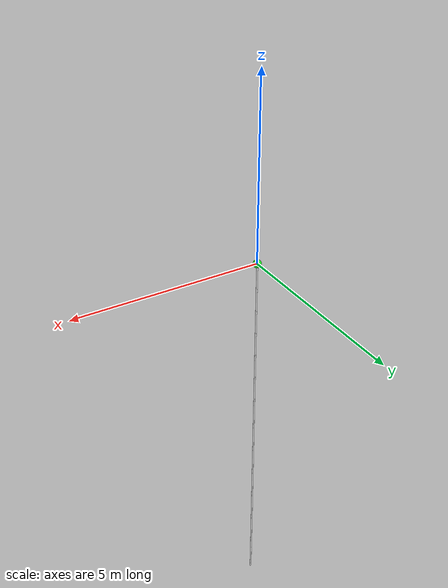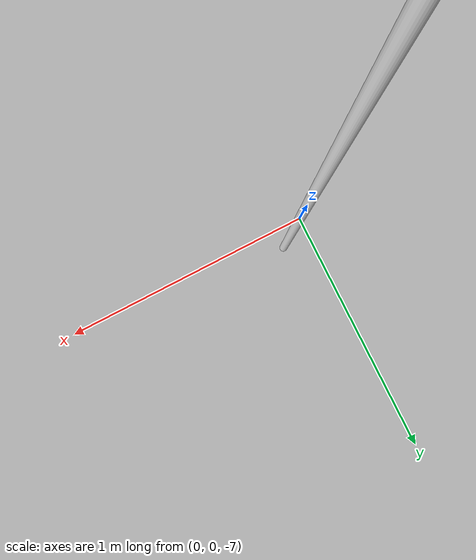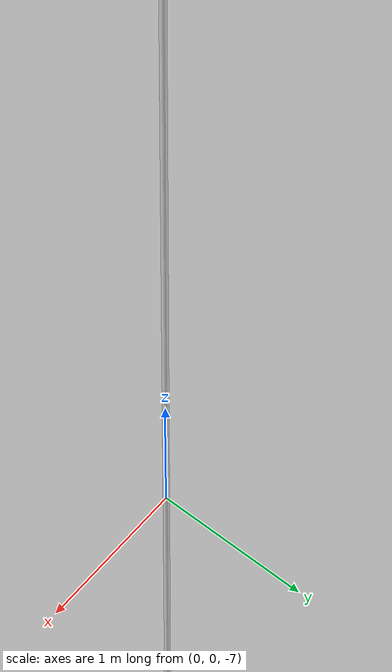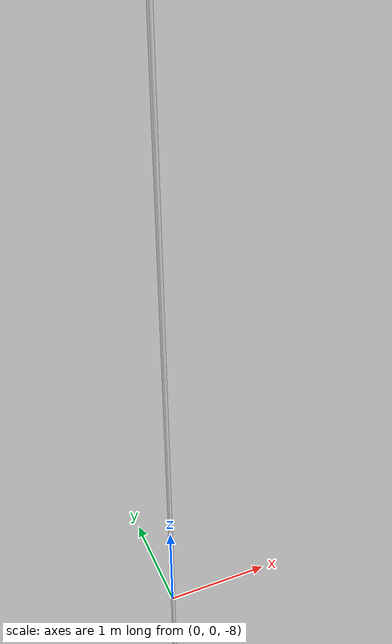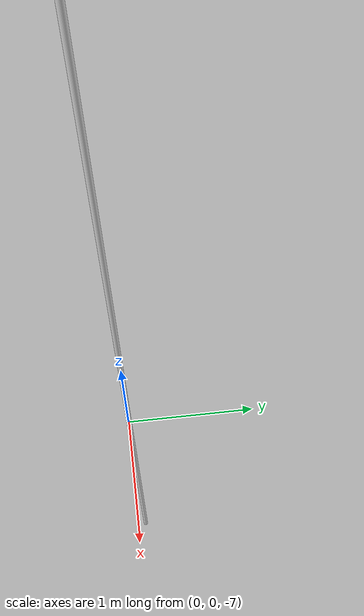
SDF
<?xml version="1.0"?>
<sdf version="1.5">
  <model name="green">
    <static>false</static>
    <link name="body">
      <collision name='bodycol'>
        <geometry>
          <sphere><radius>.11</radius></sphere>
        </geometry>
      </collision>
      <collision name='bodycol2'>
        <geometry>
                    <cylinder>
            <radius>.02</radius>
            <length>10</length>
          </cylinder>
        </geometry>
      </collision>
      <visual name="bodyvisual">
        <geometry>
          <sphere><radius>.11</radius></sphere>
        </geometry>
        <material>
          <ambient>0.1 0.9 0.1 1</ambient>
          <diffuse>0.1 0.9 0.1 1</diffuse>
          <specular>0.1 0.3 0.1 1</specular>
          <emissive>0 0 0 0</emissive>
        </material>
      </visual>
      <visual name="bodyvisual2">
        <pose>0 0 -5 0 0 0</pose>
        <geometry>
          <cylinder>
            <radius>.02</radius>
            <length>10</length>
          </cylinder>
        </geometry>
        <material>
          <ambient>0.9 0.9 0.9 1</ambient>
          <diffuse>0.9 0.9 0.9 1</diffuse>
          <specular>0.1 0.1 0.1 1</specular>
          <emissive>0 0 0 0</emissive>
        </material>
      </visual>
    </link>
  </model>
</sdf>
